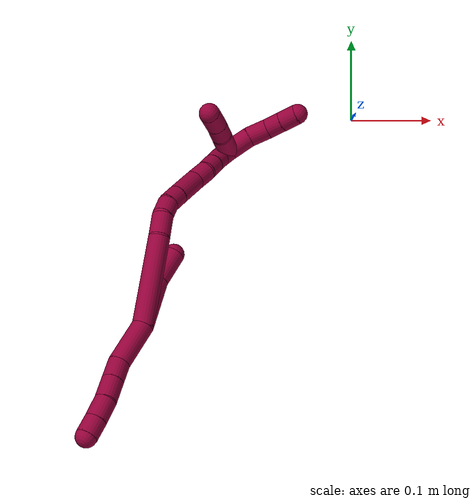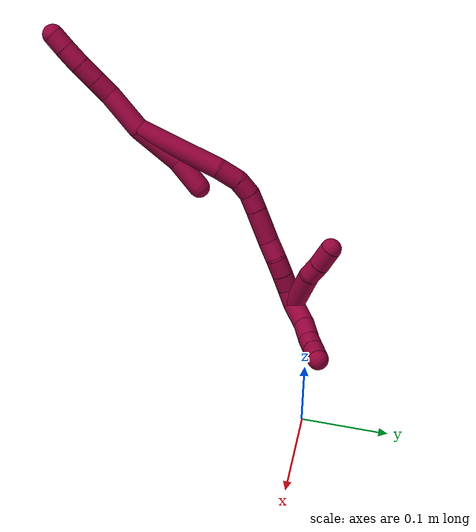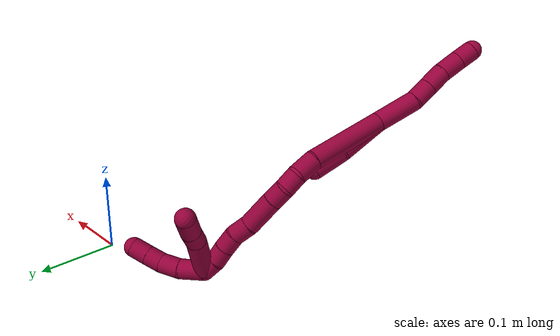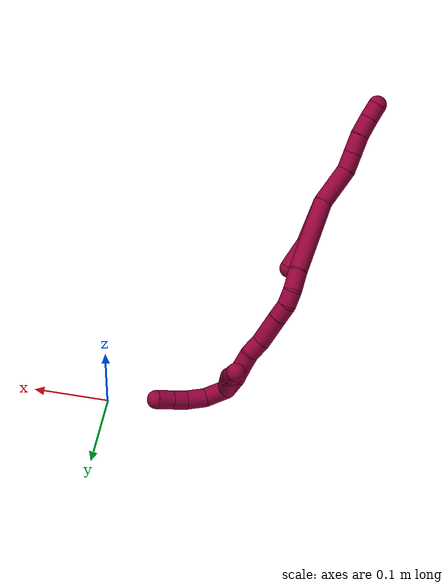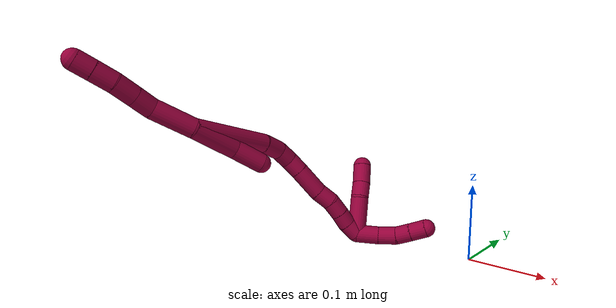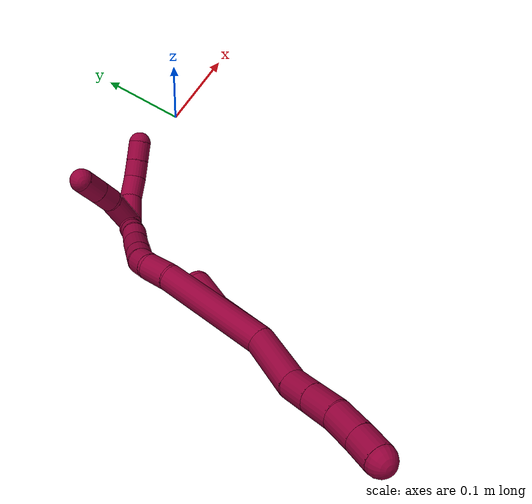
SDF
<sdf version="1.7">
 <world name="default">
  <model name="8">
   <static>0</static>
   <link name="8">
    <collision name="collision-cylinder-e_1_2_8">
     <pose>-0.001532 -0.005192 0.025868 0.198075 -0.058006 -0.005765</pose>
     <geometry><cylinder><radius>0.0125</radius><length>0.052858</length></cylinder></geometry>
     <surface>
      <friction><ode><mu>1.16</mu><mu2>1.16</mu2><slip1>0</slip1><slip2>0</slip2></ode></friction>
      <contact><ode><kp>1e+06</kp><kd>1</kd><max_vel>0</max_vel><min_depth>0.001</min_depth></ode></contact>
     </surface>
    </collision>
    <visual name="visual-cylinder-e_1_2_8">
     <pose>-0.001532 -0.005192 0.025868 0.198075 -0.058006 -0.005765</pose>
     <geometry><cylinder><radius>0.0125</radius><length>0.052858</length></cylinder></geometry>
     <material><ambient>0.584314 0 0.227451 1</ambient></material>
    </visual>
    <collision name="collision-cylinder-e_2_8_9">
     <pose>-0.001298 -0.010593 0.063726 0.01743 0.146266 0.001277</pose>
     <geometry><cylinder><radius>0.0125</radius><length>0.02424</length></cylinder></geometry>
     <surface>
      <friction><ode><mu>1.16</mu><mu2>1.16</mu2><slip1>0</slip1><slip2>0</slip2></ode></friction>
      <contact><ode><kp>1e+06</kp><kd>1</kd><max_vel>0</max_vel><min_depth>0.001</min_depth></ode></contact>
     </surface>
    </collision>
    <visual name="visual-cylinder-e_2_8_9">
     <pose>-0.001298 -0.010593 0.063726 0.01743 0.146266 0.001277</pose>
     <geometry><cylinder><radius>0.0125</radius><length>0.02424</length></cylinder></geometry>
     <material><ambient>0.584314 0 0.227451 1</ambient></material>
    </visual>
    <collision name="collision-cylinder-e_3_9_10">
     <pose>0.002402 -0.011146 0.0886 0.026681 0.148911 0.00199</pose>
     <geometry><cylinder><radius>0.0125</radius><length>0.026069</length></cylinder></geometry>
     <surface>
      <friction><ode><mu>1.16</mu><mu2>1.16</mu2><slip1>0</slip1><slip2>0</slip2></ode></friction>
      <contact><ode><kp>1e+06</kp><kd>1</kd><max_vel>0</max_vel><min_depth>0.001</min_depth></ode></contact>
     </surface>
    </collision>
    <visual name="visual-cylinder-e_3_9_10">
     <pose>0.002402 -0.011146 0.0886 0.026681 0.148911 0.00199</pose>
     <geometry><cylinder><radius>0.0125</radius><length>0.026069</length></cylinder></geometry>
     <material><ambient>0.584314 0 0.227451 1</ambient></material>
    </visual>
    <collision name="collision-cylinder-e_4_10_11">
     <pose>0.004802 -0.012972 0.114155 0.116442 0.036477 0.002126</pose>
     <geometry><cylinder><radius>0.0125</radius><length>0.025529</length></cylinder></geometry>
     <surface>
      <friction><ode><mu>1.16</mu><mu2>1.16</mu2><slip1>0</slip1><slip2>0</slip2></ode></friction>
      <contact><ode><kp>1e+06</kp><kd>1</kd><max_vel>0</max_vel><min_depth>0.001</min_depth></ode></contact>
     </surface>
    </collision>
    <visual name="visual-cylinder-e_4_10_11">
     <pose>0.004802 -0.012972 0.114155 0.116442 0.036477 0.002126</pose>
     <geometry><cylinder><radius>0.0125</radius><length>0.025529</length></cylinder></geometry>
     <material><ambient>0.584314 0 0.227451 1</ambient></material>
    </visual>
    <collision name="collision-cylinder-e_5_11_6">
     <pose>0.005244 -0.015773 0.137395 0.12415 -0.002153 -0.000134</pose>
     <geometry><cylinder><radius>0.0125</radius><length>0.021305</length></cylinder></geometry>
     <surface>
      <friction><ode><mu>1.16</mu><mu2>1.16</mu2><slip1>0</slip1><slip2>0</slip2></ode></friction>
      <contact><ode><kp>1e+06</kp><kd>1</kd><max_vel>0</max_vel><min_depth>0.001</min_depth></ode></contact>
     </surface>
    </collision>
    <visual name="visual-cylinder-e_5_11_6">
     <pose>0.005244 -0.015773 0.137395 0.12415 -0.002153 -0.000134</pose>
     <geometry><cylinder><radius>0.0125</radius><length>0.021305</length></cylinder></geometry>
     <material><ambient>0.584314 0 0.227451 1</ambient></material>
    </visual>
    <collision name="collision-cylinder-e_1_2_12">
     <pose>-0.005413 0.004574 -0.029227 -2.98636 -0.180981 1.72441</pose>
     <geometry><cylinder><radius>0.0125</radius><length>0.060147</length></cylinder></geometry>
     <surface>
      <friction><ode><mu>1.16</mu><mu2>1.16</mu2><slip1>0</slip1><slip2>0</slip2></ode></friction>
      <contact><ode><kp>1e+06</kp><kd>1</kd><max_vel>0</max_vel><min_depth>0.001</min_depth></ode></contact>
     </surface>
    </collision>
    <visual name="visual-cylinder-e_1_2_12">
     <pose>-0.005413 0.004574 -0.029227 -2.98636 -0.180981 1.72441</pose>
     <geometry><cylinder><radius>0.0125</radius><length>0.060147</length></cylinder></geometry>
     <material><ambient>0.584314 0 0.227451 1</ambient></material>
    </visual>
    <collision name="collision-cylinder-e_2_12_5">
     <pose>-0.009904 0.012143 -0.078132 -2.9905 0.046314 -0.593903</pose>
     <geometry><cylinder><radius>0.0125</radius><length>0.039853</length></cylinder></geometry>
     <surface>
      <friction><ode><mu>1.16</mu><mu2>1.16</mu2><slip1>0</slip1><slip2>0</slip2></ode></friction>
      <contact><ode><kp>1e+06</kp><kd>1</kd><max_vel>0</max_vel><min_depth>0.001</min_depth></ode></contact>
     </surface>
    </collision>
    <visual name="visual-cylinder-e_2_12_5">
     <pose>-0.009904 0.012143 -0.078132 -2.9905 0.046314 -0.593903</pose>
     <geometry><cylinder><radius>0.0125</radius><length>0.039853</length></cylinder></geometry>
     <material><ambient>0.584314 0 0.227451 1</ambient></material>
    </visual>
    <collision name="collision-cylinder-e_1_2_13">
     <pose>-0.016056 0.01905 -0.046398 -2.75199 -0.309815 1.33903</pose>
     <geometry><cylinder><radius>0.0125</radius><length>0.105328</length></cylinder></geometry>
     <surface>
      <friction><ode><mu>1.16</mu><mu2>1.16</mu2><slip1>0</slip1><slip2>0</slip2></ode></friction>
      <contact><ode><kp>1e+06</kp><kd>1</kd><max_vel>0</max_vel><min_depth>0.001</min_depth></ode></contact>
     </surface>
    </collision>
    <visual name="visual-cylinder-e_1_2_13">
     <pose>-0.016056 0.01905 -0.046398 -2.75199 -0.309815 1.33903</pose>
     <geometry><cylinder><radius>0.0125</radius><length>0.105328</length></cylinder></geometry>
     <material><ambient>0.584314 0 0.227451 1</ambient></material>
    </visual>
    <collision name="collision-cylinder-e_2_13_14">
     <pose>-0.036422 0.040573 -0.105729 -2.95274 -0.316287 2.06979</pose>
     <geometry><cylinder><radius>0.0125</radius><length>0.027709</length></cylinder></geometry>
     <surface>
      <friction><ode><mu>1.16</mu><mu2>1.16</mu2><slip1>0</slip1><slip2>0</slip2></ode></friction>
      <contact><ode><kp>1e+06</kp><kd>1</kd><max_vel>0</max_vel><min_depth>0.001</min_depth></ode></contact>
     </surface>
    </collision>
    <visual name="visual-cylinder-e_2_13_14">
     <pose>-0.036422 0.040573 -0.105729 -2.95274 -0.316287 2.06979</pose>
     <geometry><cylinder><radius>0.0125</radius><length>0.027709</length></cylinder></geometry>
     <material><ambient>0.584314 0 0.227451 1</ambient></material>
    </visual>
    <collision name="collision-cylinder-e_3_14_15">
     <pose>-0.041738 0.042368 -0.129137 3.07707 -0.095637 -1.95489</pose>
     <geometry><cylinder><radius>0.0125</radius><length>0.021089</length></cylinder></geometry>
     <surface>
      <friction><ode><mu>1.16</mu><mu2>1.16</mu2><slip1>0</slip1><slip2>0</slip2></ode></friction>
      <contact><ode><kp>1e+06</kp><kd>1</kd><max_vel>0</max_vel><min_depth>0.001</min_depth></ode></contact>
     </surface>
    </collision>
    <visual name="visual-cylinder-e_3_14_15">
     <pose>-0.041738 0.042368 -0.129137 3.07707 -0.095637 -1.95489</pose>
     <geometry><cylinder><radius>0.0125</radius><length>0.021089</length></cylinder></geometry>
     <material><ambient>0.584314 0 0.227451 1</ambient></material>
    </visual>
    <collision name="collision-cylinder-e_4_15_16">
     <pose>-0.040702 0.040124 -0.149733 2.98799 0.196888 1.81775</pose>
     <geometry><cylinder><radius>0.0125</radius><length>0.020888</length></cylinder></geometry>
     <surface>
      <friction><ode><mu>1.16</mu><mu2>1.16</mu2><slip1>0</slip1><slip2>0</slip2></ode></friction>
      <contact><ode><kp>1e+06</kp><kd>1</kd><max_vel>0</max_vel><min_depth>0.001</min_depth></ode></contact>
     </surface>
    </collision>
    <visual name="visual-cylinder-e_4_15_16">
     <pose>-0.040702 0.040124 -0.149733 2.98799 0.196888 1.81775</pose>
     <geometry><cylinder><radius>0.0125</radius><length>0.020888</length></cylinder></geometry>
     <material><ambient>0.584314 0 0.227451 1</ambient></material>
    </visual>
    <collision name="collision-cylinder-e_5_16_17">
     <pose>-0.034747 0.034766 -0.179481 2.95078 0.193262 1.58361</pose>
     <geometry><cylinder><radius>0.0125</radius><length>0.040737</length></cylinder></geometry>
     <surface>
      <friction><ode><mu>1.16</mu><mu2>1.16</mu2><slip1>0</slip1><slip2>0</slip2></ode></friction>
      <contact><ode><kp>1e+06</kp><kd>1</kd><max_vel>0</max_vel><min_depth>0.001</min_depth></ode></contact>
     </surface>
    </collision>
    <visual name="visual-cylinder-e_5_16_17">
     <pose>-0.034747 0.034766 -0.179481 2.95078 0.193262 1.58361</pose>
     <geometry><cylinder><radius>0.0125</radius><length>0.040737</length></cylinder></geometry>
     <material><ambient>0.584314 0 0.227451 1</ambient></material>
    </visual>
    <collision name="collision-cylinder-e_6_17_18">
     <pose>-0.027773 0.030836 -0.210088 3.12902 0.271942 3.04976</pose>
     <geometry><cylinder><radius>0.0125</radius><length>0.0228</length></cylinder></geometry>
     <surface>
      <friction><ode><mu>1.16</mu><mu2>1.16</mu2><slip1>0</slip1><slip2>0</slip2></ode></friction>
      <contact><ode><kp>1e+06</kp><kd>1</kd><max_vel>0</max_vel><min_depth>0.001</min_depth></ode></contact>
     </surface>
    </collision>
    <visual name="visual-cylinder-e_6_17_18">
     <pose>-0.027773 0.030836 -0.210088 3.12902 0.271942 3.04976</pose>
     <geometry><cylinder><radius>0.0125</radius><length>0.0228</length></cylinder></geometry>
     <material><ambient>0.584314 0 0.227451 1</ambient></material>
    </visual>
    <collision name="collision-cylinder-e_7_18_19">
     <pose>-0.023212 0.028088 -0.231204 2.88951 0.142257 1.02443</pose>
     <geometry><cylinder><radius>0.0125</radius><length>0.021146</length></cylinder></geometry>
     <surface>
      <friction><ode><mu>1.16</mu><mu2>1.16</mu2><slip1>0</slip1><slip2>0</slip2></ode></friction>
      <contact><ode><kp>1e+06</kp><kd>1</kd><max_vel>0</max_vel><min_depth>0.001</min_depth></ode></contact>
     </surface>
    </collision>
    <visual name="visual-cylinder-e_7_18_19">
     <pose>-0.023212 0.028088 -0.231204 2.88951 0.142257 1.02443</pose>
     <geometry><cylinder><radius>0.0125</radius><length>0.021146</length></cylinder></geometry>
     <material><ambient>0.584314 0 0.227451 1</ambient></material>
    </visual>
    <collision name="collision-cylinder-e_8_19_20">
     <pose>-0.020511 0.022429 -0.250789 2.8296 0.120464 0.732303</pose>
     <geometry><cylinder><radius>0.0125</radius><length>0.020005</length></cylinder></geometry>
     <surface>
      <friction><ode><mu>1.16</mu><mu2>1.16</mu2><slip1>0</slip1><slip2>0</slip2></ode></friction>
      <contact><ode><kp>1e+06</kp><kd>1</kd><max_vel>0</max_vel><min_depth>0.001</min_depth></ode></contact>
     </surface>
    </collision>
    <visual name="visual-cylinder-e_8_19_20">
     <pose>-0.020511 0.022429 -0.250789 2.8296 0.120464 0.732303</pose>
     <geometry><cylinder><radius>0.0125</radius><length>0.020005</length></cylinder></geometry>
     <material><ambient>0.584314 0 0.227451 1</ambient></material>
    </visual>
    <collision name="collision-cylinder-e_9_20_1">
     <pose>-0.016707 0.018157 -0.269973 3.01646 0.259295 2.24571</pose>
     <geometry><cylinder><radius>0.0125</radius><length>0.020298</length></cylinder></geometry>
     <surface>
      <friction><ode><mu>1.16</mu><mu2>1.16</mu2><slip1>0</slip1><slip2>0</slip2></ode></friction>
      <contact><ode><kp>1e+06</kp><kd>1</kd><max_vel>0</max_vel><min_depth>0.001</min_depth></ode></contact>
     </surface>
    </collision>
    <visual name="visual-cylinder-e_9_20_1">
     <pose>-0.016707 0.018157 -0.269973 3.01646 0.259295 2.24571</pose>
     <geometry><cylinder><radius>0.0125</radius><length>0.020298</length></cylinder></geometry>
     <material><ambient>0.584314 0 0.227451 1</ambient></material>
    </visual>
    <collision name="collision-cylinder-e_1_1_21">
     <pose>-0.021242 0.038912 -0.268391 -1.09538 -0.28109 0.172157</pose>
     <geometry><cylinder><radius>0.0125</radius><length>0.051461</length></cylinder></geometry>
     <surface>
      <friction><ode><mu>1.16</mu><mu2>1.16</mu2><slip1>0</slip1><slip2>0</slip2></ode></friction>
      <contact><ode><kp>1e+06</kp><kd>1</kd><max_vel>0</max_vel><min_depth>0.001</min_depth></ode></contact>
     </surface>
    </collision>
    <visual name="visual-cylinder-e_1_1_21">
     <pose>-0.021242 0.038912 -0.268391 -1.09538 -0.28109 0.172157</pose>
     <geometry><cylinder><radius>0.0125</radius><length>0.051461</length></cylinder></geometry>
     <material><ambient>0.584314 0 0.227451 1</ambient></material>
    </visual>
    <collision name="collision-cylinder-e_2_21_22">
     <pose>-0.0333 0.069929 -0.254245 -1.26723 -0.479086 0.355079</pose>
     <geometry><cylinder><radius>0.0125</radius><length>0.021346</length></cylinder></geometry>
     <surface>
      <friction><ode><mu>1.16</mu><mu2>1.16</mu2><slip1>0</slip1><slip2>0</slip2></ode></friction>
      <contact><ode><kp>1e+06</kp><kd>1</kd><max_vel>0</max_vel><min_depth>0.001</min_depth></ode></contact>
     </surface>
    </collision>
    <visual name="visual-cylinder-e_2_21_22">
     <pose>-0.0333 0.069929 -0.254245 -1.26723 -0.479086 0.355079</pose>
     <geometry><cylinder><radius>0.0125</radius><length>0.021346</length></cylinder></geometry>
     <material><ambient>0.584314 0 0.227451 1</ambient></material>
    </visual>
    <collision name="collision-cylinder-e_3_22_4">
     <pose>-0.0444 0.090106 -0.246659 -1.16728 -0.471865 0.314899</pose>
     <geometry><cylinder><radius>0.0125</radius><length>0.027193</length></cylinder></geometry>
     <surface>
      <friction><ode><mu>1.16</mu><mu2>1.16</mu2><slip1>0</slip1><slip2>0</slip2></ode></friction>
      <contact><ode><kp>1e+06</kp><kd>1</kd><max_vel>0</max_vel><min_depth>0.001</min_depth></ode></contact>
     </surface>
    </collision>
    <visual name="visual-cylinder-e_3_22_4">
     <pose>-0.0444 0.090106 -0.246659 -1.16728 -0.471865 0.314899</pose>
     <geometry><cylinder><radius>0.0125</radius><length>0.027193</length></cylinder></geometry>
     <material><ambient>0.584314 0 0.227451 1</ambient></material>
    </visual>
    <collision name="collision-cylinder-e_1_1_23">
     <pose>-0.006787 0.025063 -0.290989 -2.51722 0.484355 -1.30657</pose>
     <geometry><cylinder><radius>0.0125</radius><length>0.03143</length></cylinder></geometry>
     <surface>
      <friction><ode><mu>1.16</mu><mu2>1.16</mu2><slip1>0</slip1><slip2>0</slip2></ode></friction>
      <contact><ode><kp>1e+06</kp><kd>1</kd><max_vel>0</max_vel><min_depth>0.001</min_depth></ode></contact>
     </surface>
    </collision>
    <visual name="visual-cylinder-e_1_1_23">
     <pose>-0.006787 0.025063 -0.290989 -2.51722 0.484355 -1.30657</pose>
     <geometry><cylinder><radius>0.0125</radius><length>0.03143</length></cylinder></geometry>
     <material><ambient>0.584314 0 0.227451 1</ambient></material>
    </visual>
    <collision name="collision-cylinder-e_2_23_24">
     <pose>0.00852 0.040539 -0.309216 -2.32799 0.668897 -1.35749</pose>
     <geometry><cylinder><radius>0.0125</radius><length>0.025768</length></cylinder></geometry>
     <surface>
      <friction><ode><mu>1.16</mu><mu2>1.16</mu2><slip1>0</slip1><slip2>0</slip2></ode></friction>
      <contact><ode><kp>1e+06</kp><kd>1</kd><max_vel>0</max_vel><min_depth>0.001</min_depth></ode></contact>
     </surface>
    </collision>
    <visual name="visual-cylinder-e_2_23_24">
     <pose>0.00852 0.040539 -0.309216 -2.32799 0.668897 -1.35749</pose>
     <geometry><cylinder><radius>0.0125</radius><length>0.025768</length></cylinder></geometry>
     <material><ambient>0.584314 0 0.227451 1</ambient></material>
    </visual>
    <collision name="collision-cylinder-e_3_24_25">
     <pose>0.022413 0.055445 -0.319969 -2.03765 0.608902 -0.94362</pose>
     <geometry><cylinder><radius>0.0125</radius><length>0.020642</length></cylinder></geometry>
     <surface>
      <friction><ode><mu>1.16</mu><mu2>1.16</mu2><slip1>0</slip1><slip2>0</slip2></ode></friction>
      <contact><ode><kp>1e+06</kp><kd>1</kd><max_vel>0</max_vel><min_depth>0.001</min_depth></ode></contact>
     </surface>
    </collision>
    <visual name="visual-cylinder-e_3_24_25">
     <pose>0.022413 0.055445 -0.319969 -2.03765 0.608902 -0.94362</pose>
     <geometry><cylinder><radius>0.0125</radius><length>0.020642</length></cylinder></geometry>
     <material><ambient>0.584314 0 0.227451 1</ambient></material>
    </visual>
    <collision name="collision-cylinder-e_4_25_3">
     <pose>0.034583 0.071267 -0.327682 -2.01204 0.601107 -0.909872</pose>
     <geometry><cylinder><radius>0.0125</radius><length>0.02216</length></cylinder></geometry>
     <surface>
      <friction><ode><mu>1.16</mu><mu2>1.16</mu2><slip1>0</slip1><slip2>0</slip2></ode></friction>
      <contact><ode><kp>1e+06</kp><kd>1</kd><max_vel>0</max_vel><min_depth>0.001</min_depth></ode></contact>
     </surface>
    </collision>
    <visual name="visual-cylinder-e_4_25_3">
     <pose>0.034583 0.071267 -0.327682 -2.01204 0.601107 -0.909872</pose>
     <geometry><cylinder><radius>0.0125</radius><length>0.02216</length></cylinder></geometry>
     <material><ambient>0.584314 0 0.227451 1</ambient></material>
    </visual>
    <collision name="collision-sphere-3">
     <pose>0.040849 0.07953 -0.331584 0 -0 0</pose>
     <geometry><sphere><radius>0.0125</radius></sphere></geometry>
     <surface>
      <friction><ode><mu>1.16</mu><mu2>1.16</mu2><slip1>0</slip1><slip2>0</slip2></ode></friction>
      <contact><ode><kp>1e+06</kp><kd>1</kd><max_vel>0</max_vel><min_depth>0.001</min_depth></ode></contact>
     </surface>
    </collision>
    <visual name="visual-sphere-3">
     <pose>0.040849 0.07953 -0.331584 0 -0 0</pose>
     <geometry><sphere><radius>0.0125</radius></sphere></geometry>
     <material><ambient>0.584314 0 0.227451 1</ambient></material>
    </visual>
    <collision name="collision-sphere-25">
     <pose>0.028317 0.063005 -0.323779 0 -0 0</pose>
     <geometry><sphere><radius>0.0125</radius></sphere></geometry>
     <surface>
      <friction><ode><mu>1.16</mu><mu2>1.16</mu2><slip1>0</slip1><slip2>0</slip2></ode></friction>
      <contact><ode><kp>1e+06</kp><kd>1</kd><max_vel>0</max_vel><min_depth>0.001</min_depth></ode></contact>
     </surface>
    </collision>
    <visual name="visual-sphere-25">
     <pose>0.028317 0.063005 -0.323779 0 -0 0</pose>
     <geometry><sphere><radius>0.0125</radius></sphere></geometry>
     <material><ambient>0.584314 0 0.227451 1</ambient></material>
    </visual>
    <collision name="collision-sphere-24">
     <pose>0.01651 0.047884 -0.316158 0 -0 0</pose>
     <geometry><sphere><radius>0.0125</radius></sphere></geometry>
     <surface>
      <friction><ode><mu>1.16</mu><mu2>1.16</mu2><slip1>0</slip1><slip2>0</slip2></ode></friction>
      <contact><ode><kp>1e+06</kp><kd>1</kd><max_vel>0</max_vel><min_depth>0.001</min_depth></ode></contact>
     </surface>
    </collision>
    <visual name="visual-sphere-24">
     <pose>0.01651 0.047884 -0.316158 0 -0 0</pose>
     <geometry><sphere><radius>0.0125</radius></sphere></geometry>
     <material><ambient>0.584314 0 0.227451 1</ambient></material>
    </visual>
    <collision name="collision-sphere-23">
     <pose>0.000531 0.033193 -0.302273 0 -0 0</pose>
     <geometry><sphere><radius>0.0125</radius></sphere></geometry>
     <surface>
      <friction><ode><mu>1.16</mu><mu2>1.16</mu2><slip1>0</slip1><slip2>0</slip2></ode></friction>
      <contact><ode><kp>1e+06</kp><kd>1</kd><max_vel>0</max_vel><min_depth>0.001</min_depth></ode></contact>
     </surface>
    </collision>
    <visual name="visual-sphere-23">
     <pose>0.000531 0.033193 -0.302273 0 -0 0</pose>
     <geometry><sphere><radius>0.0125</radius></sphere></geometry>
     <material><ambient>0.584314 0 0.227451 1</ambient></material>
    </visual>
    <collision name="collision-sphere-4">
     <pose>-0.05058 0.101244 -0.241903 0 -0 0</pose>
     <geometry><sphere><radius>0.0125</radius></sphere></geometry>
     <surface>
      <friction><ode><mu>1.16</mu><mu2>1.16</mu2><slip1>0</slip1><slip2>0</slip2></ode></friction>
      <contact><ode><kp>1e+06</kp><kd>1</kd><max_vel>0</max_vel><min_depth>0.001</min_depth></ode></contact>
     </surface>
    </collision>
    <visual name="visual-sphere-4">
     <pose>-0.05058 0.101244 -0.241903 0 -0 0</pose>
     <geometry><sphere><radius>0.0125</radius></sphere></geometry>
     <material><ambient>0.584314 0 0.227451 1</ambient></material>
    </visual>
    <collision name="collision-sphere-22">
     <pose>-0.03822 0.078968 -0.251414 0 -0 0</pose>
     <geometry><sphere><radius>0.0125</radius></sphere></geometry>
     <surface>
      <friction><ode><mu>1.16</mu><mu2>1.16</mu2><slip1>0</slip1><slip2>0</slip2></ode></friction>
      <contact><ode><kp>1e+06</kp><kd>1</kd><max_vel>0</max_vel><min_depth>0.001</min_depth></ode></contact>
     </surface>
    </collision>
    <visual name="visual-sphere-22">
     <pose>-0.03822 0.078968 -0.251414 0 -0 0</pose>
     <geometry><sphere><radius>0.0125</radius></sphere></geometry>
     <material><ambient>0.584314 0 0.227451 1</ambient></material>
    </visual>
    <collision name="collision-sphere-21">
     <pose>-0.02838 0.060891 -0.257076 0 -0 0</pose>
     <geometry><sphere><radius>0.0125</radius></sphere></geometry>
     <surface>
      <friction><ode><mu>1.16</mu><mu2>1.16</mu2><slip1>0</slip1><slip2>0</slip2></ode></friction>
      <contact><ode><kp>1e+06</kp><kd>1</kd><max_vel>0</max_vel><min_depth>0.001</min_depth></ode></contact>
     </surface>
    </collision>
    <visual name="visual-sphere-21">
     <pose>-0.02838 0.060891 -0.257076 0 -0 0</pose>
     <geometry><sphere><radius>0.0125</radius></sphere></geometry>
     <material><ambient>0.584314 0 0.227451 1</ambient></material>
    </visual>
    <collision name="collision-sphere-1">
     <pose>-0.014104 0.016933 -0.279706 0 -0 0</pose>
     <geometry><sphere><radius>0.0125</radius></sphere></geometry>
     <surface>
      <friction><ode><mu>1.16</mu><mu2>1.16</mu2><slip1>0</slip1><slip2>0</slip2></ode></friction>
      <contact><ode><kp>1e+06</kp><kd>1</kd><max_vel>0</max_vel><min_depth>0.001</min_depth></ode></contact>
     </surface>
    </collision>
    <visual name="visual-sphere-1">
     <pose>-0.014104 0.016933 -0.279706 0 -0 0</pose>
     <geometry><sphere><radius>0.0125</radius></sphere></geometry>
     <material><ambient>0.584314 0 0.227451 1</ambient></material>
    </visual>
    <collision name="collision-sphere-6">
     <pose>0.005221 -0.017092 0.147965 0 -0 0</pose>
     <geometry><sphere><radius>0.0125</radius></sphere></geometry>
     <surface>
      <friction><ode><mu>1.16</mu><mu2>1.16</mu2><slip1>0</slip1><slip2>0</slip2></ode></friction>
      <contact><ode><kp>1e+06</kp><kd>1</kd><max_vel>0</max_vel><min_depth>0.001</min_depth></ode></contact>
     </surface>
    </collision>
    <visual name="visual-sphere-6">
     <pose>0.005221 -0.017092 0.147965 0 -0 0</pose>
     <geometry><sphere><radius>0.0125</radius></sphere></geometry>
     <material><ambient>0.584314 0 0.227451 1</ambient></material>
    </visual>
    <collision name="collision-sphere-11">
     <pose>0.005267 -0.014454 0.126824 0 -0 0</pose>
     <geometry><sphere><radius>0.0125</radius></sphere></geometry>
     <surface>
      <friction><ode><mu>1.16</mu><mu2>1.16</mu2><slip1>0</slip1><slip2>0</slip2></ode></friction>
      <contact><ode><kp>1e+06</kp><kd>1</kd><max_vel>0</max_vel><min_depth>0.001</min_depth></ode></contact>
     </surface>
    </collision>
    <visual name="visual-sphere-11">
     <pose>0.005267 -0.014454 0.126824 0 -0 0</pose>
     <geometry><sphere><radius>0.0125</radius></sphere></geometry>
     <material><ambient>0.584314 0 0.227451 1</ambient></material>
    </visual>
    <collision name="collision-sphere-10">
     <pose>0.004336 -0.01149 0.101485 0 -0 0</pose>
     <geometry><sphere><radius>0.0125</radius></sphere></geometry>
     <surface>
      <friction><ode><mu>1.16</mu><mu2>1.16</mu2><slip1>0</slip1><slip2>0</slip2></ode></friction>
      <contact><ode><kp>1e+06</kp><kd>1</kd><max_vel>0</max_vel><min_depth>0.001</min_depth></ode></contact>
     </surface>
    </collision>
    <visual name="visual-sphere-10">
     <pose>0.004336 -0.01149 0.101485 0 -0 0</pose>
     <geometry><sphere><radius>0.0125</radius></sphere></geometry>
     <material><ambient>0.584314 0 0.227451 1</ambient></material>
    </visual>
    <collision name="collision-sphere-9">
     <pose>0.000468 -0.010802 0.075714 0 -0 0</pose>
     <geometry><sphere><radius>0.0125</radius></sphere></geometry>
     <surface>
      <friction><ode><mu>1.16</mu><mu2>1.16</mu2><slip1>0</slip1><slip2>0</slip2></ode></friction>
      <contact><ode><kp>1e+06</kp><kd>1</kd><max_vel>0</max_vel><min_depth>0.001</min_depth></ode></contact>
     </surface>
    </collision>
    <visual name="visual-sphere-9">
     <pose>0.000468 -0.010802 0.075714 0 -0 0</pose>
     <geometry><sphere><radius>0.0125</radius></sphere></geometry>
     <material><ambient>0.584314 0 0.227451 1</ambient></material>
    </visual>
    <collision name="collision-sphere-2">
     <geometry><sphere><radius>0.0125</radius></sphere></geometry>
     <surface>
      <friction><ode><mu>1.16</mu><mu2>1.16</mu2><slip1>0</slip1><slip2>0</slip2></ode></friction>
      <contact><ode><kp>1e+06</kp><kd>1</kd><max_vel>0</max_vel><min_depth>0.001</min_depth></ode></contact>
     </surface>
    </collision>
    <visual name="visual-sphere-2">
     <geometry><sphere><radius>0.0125</radius></sphere></geometry>
     <material><ambient>0.584314 0 0.227451 1</ambient></material>
    </visual>
    <collision name="collision-sphere-19">
     <pose>-0.021713 0.025477 -0.241339 0 -0 0</pose>
     <geometry><sphere><radius>0.0125</radius></sphere></geometry>
     <surface>
      <friction><ode><mu>1.16</mu><mu2>1.16</mu2><slip1>0</slip1><slip2>0</slip2></ode></friction>
      <contact><ode><kp>1e+06</kp><kd>1</kd><max_vel>0</max_vel><min_depth>0.001</min_depth></ode></contact>
     </surface>
    </collision>
    <visual name="visual-sphere-19">
     <pose>-0.021713 0.025477 -0.241339 0 -0 0</pose>
     <geometry><sphere><radius>0.0125</radius></sphere></geometry>
     <material><ambient>0.584314 0 0.227451 1</ambient></material>
    </visual>
    <collision name="collision-sphere-8">
     <pose>-0.003064 -0.010384 0.051737 0 -0 0</pose>
     <geometry><sphere><radius>0.0125</radius></sphere></geometry>
     <surface>
      <friction><ode><mu>1.16</mu><mu2>1.16</mu2><slip1>0</slip1><slip2>0</slip2></ode></friction>
      <contact><ode><kp>1e+06</kp><kd>1</kd><max_vel>0</max_vel><min_depth>0.001</min_depth></ode></contact>
     </surface>
    </collision>
    <visual name="visual-sphere-8">
     <pose>-0.003064 -0.010384 0.051737 0 -0 0</pose>
     <geometry><sphere><radius>0.0125</radius></sphere></geometry>
     <material><ambient>0.584314 0 0.227451 1</ambient></material>
    </visual>
    <collision name="collision-sphere-12">
     <pose>-0.010826 0.009147 -0.058453 0 -0 0</pose>
     <geometry><sphere><radius>0.0125</radius></sphere></geometry>
     <surface>
      <friction><ode><mu>1.16</mu><mu2>1.16</mu2><slip1>0</slip1><slip2>0</slip2></ode></friction>
      <contact><ode><kp>1e+06</kp><kd>1</kd><max_vel>0</max_vel><min_depth>0.001</min_depth></ode></contact>
     </surface>
    </collision>
    <visual name="visual-sphere-12">
     <pose>-0.010826 0.009147 -0.058453 0 -0 0</pose>
     <geometry><sphere><radius>0.0125</radius></sphere></geometry>
     <material><ambient>0.584314 0 0.227451 1</ambient></material>
    </visual>
    <collision name="collision-sphere-5">
     <pose>-0.008981 0.015139 -0.09781 0 -0 0</pose>
     <geometry><sphere><radius>0.0125</radius></sphere></geometry>
     <surface>
      <friction><ode><mu>1.16</mu><mu2>1.16</mu2><slip1>0</slip1><slip2>0</slip2></ode></friction>
      <contact><ode><kp>1e+06</kp><kd>1</kd><max_vel>0</max_vel><min_depth>0.001</min_depth></ode></contact>
     </surface>
    </collision>
    <visual name="visual-sphere-5">
     <pose>-0.008981 0.015139 -0.09781 0 -0 0</pose>
     <geometry><sphere><radius>0.0125</radius></sphere></geometry>
     <material><ambient>0.584314 0 0.227451 1</ambient></material>
    </visual>
    <collision name="collision-sphere-13">
     <pose>-0.032113 0.038101 -0.092796 0 -0 0</pose>
     <geometry><sphere><radius>0.0125</radius></sphere></geometry>
     <surface>
      <friction><ode><mu>1.16</mu><mu2>1.16</mu2><slip1>0</slip1><slip2>0</slip2></ode></friction>
      <contact><ode><kp>1e+06</kp><kd>1</kd><max_vel>0</max_vel><min_depth>0.001</min_depth></ode></contact>
     </surface>
    </collision>
    <visual name="visual-sphere-13">
     <pose>-0.032113 0.038101 -0.092796 0 -0 0</pose>
     <geometry><sphere><radius>0.0125</radius></sphere></geometry>
     <material><ambient>0.584314 0 0.227451 1</ambient></material>
    </visual>
    <collision name="collision-sphere-14">
     <pose>-0.040731 0.043045 -0.118662 0 -0 0</pose>
     <geometry><sphere><radius>0.0125</radius></sphere></geometry>
     <surface>
      <friction><ode><mu>1.16</mu><mu2>1.16</mu2><slip1>0</slip1><slip2>0</slip2></ode></friction>
      <contact><ode><kp>1e+06</kp><kd>1</kd><max_vel>0</max_vel><min_depth>0.001</min_depth></ode></contact>
     </surface>
    </collision>
    <visual name="visual-sphere-14">
     <pose>-0.040731 0.043045 -0.118662 0 -0 0</pose>
     <geometry><sphere><radius>0.0125</radius></sphere></geometry>
     <material><ambient>0.584314 0 0.227451 1</ambient></material>
    </visual>
    <collision name="collision-sphere-15">
     <pose>-0.042745 0.041691 -0.139611 0 -0 0</pose>
     <geometry><sphere><radius>0.0125</radius></sphere></geometry>
     <surface>
      <friction><ode><mu>1.16</mu><mu2>1.16</mu2><slip1>0</slip1><slip2>0</slip2></ode></friction>
      <contact><ode><kp>1e+06</kp><kd>1</kd><max_vel>0</max_vel><min_depth>0.001</min_depth></ode></contact>
     </surface>
    </collision>
    <visual name="visual-sphere-15">
     <pose>-0.042745 0.041691 -0.139611 0 -0 0</pose>
     <geometry><sphere><radius>0.0125</radius></sphere></geometry>
     <material><ambient>0.584314 0 0.227451 1</ambient></material>
    </visual>
    <collision name="collision-sphere-16">
     <pose>-0.038659 0.038557 -0.159855 0 -0 0</pose>
     <geometry><sphere><radius>0.0125</radius></sphere></geometry>
     <surface>
      <friction><ode><mu>1.16</mu><mu2>1.16</mu2><slip1>0</slip1><slip2>0</slip2></ode></friction>
      <contact><ode><kp>1e+06</kp><kd>1</kd><max_vel>0</max_vel><min_depth>0.001</min_depth></ode></contact>
     </surface>
    </collision>
    <visual name="visual-sphere-16">
     <pose>-0.038659 0.038557 -0.159855 0 -0 0</pose>
     <geometry><sphere><radius>0.0125</radius></sphere></geometry>
     <material><ambient>0.584314 0 0.227451 1</ambient></material>
    </visual>
    <collision name="collision-sphere-17">
     <pose>-0.030835 0.030974 -0.199108 0 -0 0</pose>
     <geometry><sphere><radius>0.0125</radius></sphere></geometry>
     <surface>
      <friction><ode><mu>1.16</mu><mu2>1.16</mu2><slip1>0</slip1><slip2>0</slip2></ode></friction>
      <contact><ode><kp>1e+06</kp><kd>1</kd><max_vel>0</max_vel><min_depth>0.001</min_depth></ode></contact>
     </surface>
    </collision>
    <visual name="visual-sphere-17">
     <pose>-0.030835 0.030974 -0.199108 0 -0 0</pose>
     <geometry><sphere><radius>0.0125</radius></sphere></geometry>
     <material><ambient>0.584314 0 0.227451 1</ambient></material>
    </visual>
    <collision name="collision-sphere-18">
     <pose>-0.024711 0.030698 -0.221068 0 -0 0</pose>
     <geometry><sphere><radius>0.0125</radius></sphere></geometry>
     <surface>
      <friction><ode><mu>1.16</mu><mu2>1.16</mu2><slip1>0</slip1><slip2>0</slip2></ode></friction>
      <contact><ode><kp>1e+06</kp><kd>1</kd><max_vel>0</max_vel><min_depth>0.001</min_depth></ode></contact>
     </surface>
    </collision>
    <visual name="visual-sphere-18">
     <pose>-0.024711 0.030698 -0.221068 0 -0 0</pose>
     <geometry><sphere><radius>0.0125</radius></sphere></geometry>
     <material><ambient>0.584314 0 0.227451 1</ambient></material>
    </visual>
    <collision name="collision-sphere-20">
     <pose>-0.019309 0.019381 -0.26024 0 -0 0</pose>
     <geometry><sphere><radius>0.0125</radius></sphere></geometry>
     <surface>
      <friction><ode><mu>1.16</mu><mu2>1.16</mu2><slip1>0</slip1><slip2>0</slip2></ode></friction>
      <contact><ode><kp>1e+06</kp><kd>1</kd><max_vel>0</max_vel><min_depth>0.001</min_depth></ode></contact>
     </surface>
    </collision>
    <visual name="visual-sphere-20">
     <pose>-0.019309 0.019381 -0.26024 0 -0 0</pose>
     <geometry><sphere><radius>0.0125</radius></sphere></geometry>
     <material><ambient>0.584314 0 0.227451 1</ambient></material>
    </visual>
    <inertial>
     <pose>-0.013376 0.024219 -0.12252 0 -0 0</pose>
     <mass>0.75</mass>
     <inertia>
      <ixx>0.000183</ixx>
      <ixy>0</ixy>
      <ixz>0</ixz>
      <iyy>0.000157</iyy>
      <iyz>0</iyz>
      <izz>-4.2e-05</izz>
     </inertia>
    </inertial>
   </link>
   <pose>-0.243514 -0.247561 0.179407 0.876349 0.017988 -0.483101</pose>
  </model>
 </world>
</sdf>
